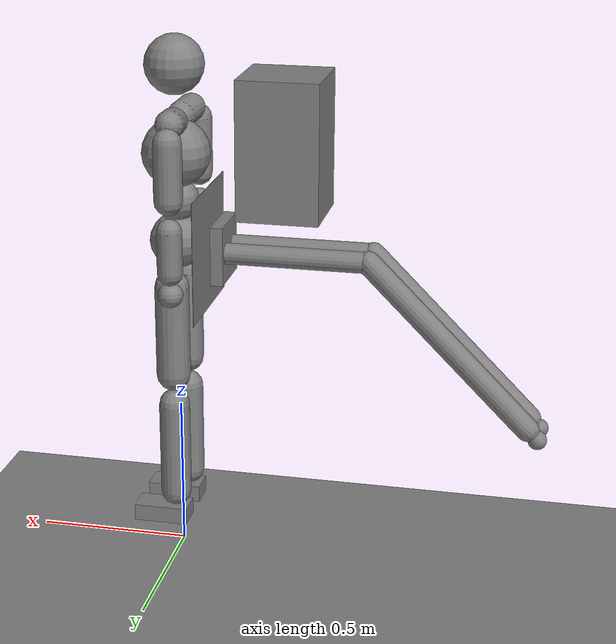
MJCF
<?xml version="1.0" encoding="utf-8"?>
<mujoco model="XMLModel">
	<statistic center="0 0 1" extent="2"/>
	<option timestep="0.00555"/>
	<default>
		<motor ctrllimited="true" ctrlrange="-1 1"/>
		<default class="body">
			<geom condim="1" friction="1.0 0.05 0.05" type="capsule" solimp="0.9 0.99 0.003" solref="0.015 1"/>
			<joint armature="0.007" damping="0.1" limited="true" stiffness="5" type="hinge" solimplimit="0 0.99 0.01"/>
			<site group="3" size="0.04"/>
			<default class="force-torque">
				<site rgba="1 0 0 1" size="0.01 0.01 0.02" type="box"/>
			</default>
			<default class="touch">
				<site rgba="0 0 1 0.3" type="capsule"/>
			</default>
		</default>
	</default>
	<asset/>
	<worldbody>
		<geom conaffinity="1" name="floor" size="100 100 0.2" type="plane"/>
		<body childclass="body" name="pelvis" pos="0 0 1">
			<site class="force-torque" name="root"/>
			<geom density="2226" name="pelvis" pos="0 0 0.07" size="0.09" type="sphere"/>
			<geom density="2226" name="upper_waist" pos="0 0 0.205" size="0.07" type="sphere"/>
			<site class="touch" name="pelvis" pos="0 0 0.07" size="0.091" type="sphere"/>
			<site class="touch" name="upper_waist" pos="0 0 0.205" size="0.071" type="sphere"/>
			<body name="torso" pos="0 0 0.236151">
				<light mode="trackcom" name="top" pos="0 0 2"/>
				<camera mode="trackcom" name="back" pos="-3 0 1" xyaxes="0 -1 0 1 0 2"/>
				<camera mode="trackcom" name="side" pos="0 -3 1" xyaxes="1 0 0 0 1 2"/>
				<joint armature="0.025" axis="1 0 0" damping="60" name="abdomen_x" pos="0 0 0" range="-60 60" stiffness="600"/>
				<joint armature="0.025" axis="0 1 0" damping="60" name="abdomen_y" pos="0 0 0" range="-60 90" stiffness="600"/>
				<joint armature="0.025" axis="0 0 1" damping="60" name="abdomen_z" pos="0 0 0" range="-50 50" stiffness="600"/>
				<geom density="1794" name="torso" pos="0 0 0.12" size="0.11" type="sphere"/>
				<site class="touch" name="torso" pos="0 0 0.12" size="0.111" type="sphere"/>
				<geom density="1100" fromto="-0.0060125 -0.0457775 0.2287955 -0.016835 -0.128177 0.2376182" name="right_clavicle" size="0.045"/>
				<geom density="1100" fromto="-0.0060125 0.0457775 0.2287955 -0.016835 0.128177 0.2376182" name="left_clavicle" size="0.045"/>
				<body name="head" pos="0 0 0.223894">
					<joint armature="0.017" axis="1 0 0" damping="5" name="neck_x" range="-50 50" stiffness="50"/>
					<joint armature="0.017" axis="0 1 0" damping="5" name="neck_y" range="-40 60" stiffness="50"/>
					<joint armature="0.017" axis="0 0 1" damping="5" name="neck_z" range="-45 45" stiffness="50"/>
					<geom density="1081" name="head" pos="0 0 0.175" size="0.095" type="sphere"/>
					<site class="touch" name="head" pos="0 0 0.175" size="0.103" type="sphere"/>
					<camera fovy="80" name="egocentric" pos="0.103 0 0.175" xyaxes="0 -1 0 0.1 0 1"/>
				</body>
				<body name="right_upper_arm" pos="-0.02405 -0.18311 0.2435">
					<joint armature="0.02" axis="1 0 0" damping="20" name="right_shoulder_x" range="-180 45" stiffness="200"/>
					<joint armature="0.02" axis="0 1 0" damping="20" name="right_shoulder_y" range="-180 60" stiffness="200"/>
					<joint armature="0.02" axis="0 0 1" damping="20" name="right_shoulder_z" range="-90 90" stiffness="200"/>
					<geom density="982" fromto="0 0 -0.05 0 0 -0.23" name="right_upper_arm" size="0.045"/>
					<site class="touch" name="right_upper_arm" pos="0 0 -0.14" size="0.046 0.1" zaxis="0 0 1"/>
					<body name="right_lower_arm" pos="0 0 -0.274788">
						<joint armature="0.015" axis="0 1 0" damping="15" name="right_elbow" range="-160 0" stiffness="150"/>
						<geom density="1056" fromto="0 0 -0.0525 0 0 -0.1875" name="right_lower_arm" size="0.04"/>
						<site class="touch" name="right_lower_arm" pos="0 0 -0.12" size="0.041 0.0685" zaxis="0 1 0"/>
						<body name="right_hand" pos="0 0 -0.258947">
							<geom density="1865" name="right_hand" size="0.04" type="sphere"/>
							<site class="touch" name="right_hand" size="0.041" type="sphere"/>
						</body>
					</body>
				</body>
				<body name="left_upper_arm" pos="-0.02405 0.18311 0.2435">
					<joint armature="0.02" axis="1 0 0" damping="20" name="left_shoulder_x" range="-45 180" stiffness="200"/>
					<joint armature="0.02" axis="0 1 0" damping="20" name="left_shoulder_y" range="-180 60" stiffness="200"/>
					<joint armature="0.02" axis="0 0 1" damping="20" name="left_shoulder_z" range="-90 90" stiffness="200"/>
					<geom density="982" fromto="0 0 -0.05 0 0 -0.23" name="left_upper_arm" size="0.045"/>
					<site class="touch" name="left_upper_arm" pos="0 0 -0.14" size="0.046 0.1" zaxis="0 0 1"/>
					<body name="left_lower_arm" pos="0 0 -0.274788">
						<joint armature="0.015" axis="0 1 0" damping="15" name="left_elbow" range="-160 0" stiffness="150"/>
						<geom density="1056" fromto="0 0 -0.0525 0 0 -0.1875" name="left_lower_arm" size="0.04"/>
						<site class="touch" name="left_lower_arm" pos="0 0 -0.1" size="0.041 0.0685" zaxis="0 0 1"/>
						<body name="left_hand" pos="0 0 -0.258947">
							<geom density="1865" name="left_hand" size="0.04" type="sphere"/>
							<site class="touch" name="left_hand" size="0.041" type="sphere"/>
						</body>
					</body>
				</body>
			</body>
			<body name="right_thigh" pos="0 -0.084887 0">
				<site class="force-torque" name="right_hip"/>
				<joint armature="0.02" axis="1 0 0" damping="30" name="right_hip_x" range="-60 15" stiffness="300"/>
				<joint armature="0.02" axis="0 1 0" damping="30" name="right_hip_y" range="-140 60" stiffness="300"/>
				<joint armature="0.02" axis="0 0 1" damping="30" name="right_hip_z" range="-60 35" stiffness="300"/>
				<geom density="1269" fromto="0 0 -0.06 0 0 -0.36" name="right_thigh" size="0.055"/>
				<site class="touch" name="right_thigh" pos="0 0 -0.21" size="0.056 0.301" zaxis="0 0 -1"/>
				<body name="right_shin" pos="0 0 -0.421546">
					<site class="force-torque" name="right_knee" pos="0 0 0"/>
					<joint armature="0.02" axis="0 1 0" damping="30" name="right_knee" pos="0 0 0" range="0 160" stiffness="300"/>
					<geom density="1014" fromto="0 0 -0.045 0 0 -0.355" name="right_shin" size="0.05"/>
					<site class="touch" name="right_shin" pos="0 0 -0.2" size="0.051 0.156" zaxis="0 0 -1"/>
					<body name="right_foot" pos="0 0 -0.40987">
						<site class="force-torque" name="right_ankle"/>
						<joint armature="0.01" axis="1 0 0" damping="20" name="right_ankle_x" pos="0 0 0" range="-30 30" stiffness="200"/>
						<joint armature="0.01" axis="0 1 0" damping="20" name="right_ankle_y" pos="0 0 0" range="-55 55" stiffness="200"/>
						<joint armature="0.01" axis="0 0 1" damping="20" name="right_ankle_z" pos="0 0 0" range="-40 40" stiffness="200"/>
						<geom density="1141" name="right_foot" pos="0.045 0 -0.0225" size="0.0885 0.045 0.0275" type="box"/>
						<site class="touch" name="right_foot" pos="0.045 0 -0.0225" size="0.0895 0.055 0.0285" type="box"/>
					</body>
				</body>
			</body>
			<body name="left_thigh" pos="0 0.084887 0">
				<site class="force-torque" name="left_hip"/>
				<joint armature="0.02" axis="1 0 0" damping="30" name="left_hip_x" range="-15 60" stiffness="300"/>
				<joint armature="0.02" axis="0 1 0" damping="30" name="left_hip_y" range="-140 60" stiffness="300"/>
				<joint armature="0.02" axis="0 0 1" damping="30" name="left_hip_z" range="-35 60" stiffness="300"/>
				<geom density="1269" fromto="0 0 -0.06 0 0 -0.36" name="left_thigh" size="0.055"/>
				<site class="touch" name="left_thigh" pos="0 0 -0.21" size="0.056 0.301" zaxis="0 0 -1"/>
				<body name="left_shin" pos="0 0 -0.421546">
					<site class="force-torque" name="left_knee" pos="0 0 0.02"/>
					<joint armature="0.02" axis="0 1 0" damping="30" name="left_knee" pos="0 0 0" range="0 160" stiffness="300"/>
					<geom density="1014" fromto="0 0 -0.045 0 0 -0.355" name="left_shin" size="0.05"/>
					<site class="touch" name="left_shin" pos="0 0 -0.2" size="0.051 0.156" zaxis="0 0 -1"/>
					<body name="left_foot" pos="0 0 -0.40987">
						<site class="force-torque" name="left_ankle"/>
						<joint armature="0.01" axis="1 0 0" damping="20" name="left_ankle_x" pos="0 0 0" range="-30 30" stiffness="200"/>
						<joint armature="0.01" axis="0 1 0" damping="20" name="left_ankle_y" pos="0 0 0" range="-55 55" stiffness="200"/>
						<joint armature="0.01" axis="0 0 1" damping="20" name="left_ankle_z" pos="0 0 0" range="-40 40" stiffness="200"/>
						<geom density="1141" name="left_foot" pos="0.045 0 -0.0225" size="0.0885 0.045 0.0275" type="box"/>
						<site class="touch" name="left_foot" pos="0.045 0 -0.0225" size="0.0895 0.055 0.0285" type="box"/>
					</body>
				</body>
			</body>
            <body name="SRL" pos="-0.10 0 0.05" quat="0.0 0.0 0.0 1.0">
                <geom name="board" pos="0 0 0" size="0.0005 0.2 0.2 " type="box" density='100'/>
                <body name="SRL_root" pos="0.05 0 0" quat="1.0 0.0 0.0 0.0">
                    <geom density="2500" name="SRL_geom_root" pos="0 0 0" size="0.02 0.095 0.095" type="box"/>
                    <geom density="6000" name="SRL_geom_load" pos="0.2 0 0.35" size="0.13 0.13 0.22" type="box"/>
                    <body name="SRL_right_leg1" pos="0.02 0.0475 0" quat="1.0 0.0 0.0 0.0">
                        <geom density="2500" fromto="0 0 0 0.45525871729565426 0 0" name="SRL_geom_right_leg1" size="0.03380139001341963" type="capsule"/>
                        <joint armature="0.02" axis="0 0 1" damping="30" name="SRL_joint_right_hipjoint_z" pos="0 0 0" range="0 40" stiffness="300"/>
                        <joint armature="0.02" axis="0 1 0" damping="30" name="SRL_joint_right_hipjoint_y" pos="0 0 0" range="-5 70" stiffness="300"/>
                        <body name="SRL_right_leg2" pos="0.45525871729565426 0 0" quat="0.92388 0.0 0.38268 0.0">
                            <geom density="2500" fromto="0 0 0 0.7308293967019263 0 0" name="SRL_geom_right_leg2" size="0.03720657470293556" type="capsule"/>
                            <joint armature="0.02" axis="0 1 0" damping="30" name="SRL_joint_right_kneejoint" pos="0 0 0" range="-50 50" stiffness="300"/>
                            <body name="SRL_right_end" pos="0.7308293967019263 0 0" quat="0.70711 0.0 -0.70711 0.0">
                                <geom density="2500" friction="5.0 0.05 0.05" name="SRL_geom_right_end" pos="0 0 -0.045" size="0.030582728641148155" type="sphere"/>
                                <joint armature="0.02" axis="0 1 0" damping="30" name="SRL_joint_right_ankle" pos="0 0 0" range="-5 5" stiffness="300"/>
                            </body>
                        </body>
                    </body>
                    <body name="SRL_left_leg1" pos="0.02 -0.0475 0" quat="1.0 0.0 0.0 0.0">
                        <geom density="2500" fromto="0 0 0 0.45525871729565426 0 0" name="SRL_geom_left_leg1" size="0.03380139001341963" type="capsule"/>
                        <joint armature="0.02" axis="0 0 1" damping="30" name="SRL_joint_left_hip_z" pos="0 0 0" range="-40 0" stiffness="300"/>
                        <joint armature="0.02" axis="0 1 0" damping="30" name="SRL_joint_left_hip_y" pos="0 0 0" range="-5 70" stiffness="300"/>
                        <body name="SRL_left_leg2" pos="0.45525871729565426 0 0" quat="0.92388 0.0 0.38268 0.0">
                            <geom density="2500" fromto="0 0 0 0.7308293967019263 0 0" name="SRL_geom_left_leg2" size="0.03720657470293556" type="capsule"/>
                            <joint armature="0.02" axis="0 1 0" damping="30" name="SRL_joint_left_kneejoint" pos="0 0 0" range="-50 50" stiffness="300"/>
                            <body name="SRL_left_end" pos="0.7308293967019263 0 0" quat="0.70711 0.0 -0.70711 0.0">
                                <geom density="2500" friction="5.0 0.05 0.05" name="SRL_geom_left_end" pos="0 0 -0.045" size="0.030582728641148155" type="sphere"/>
                                <joint armature="0.02" axis="0 1 0" damping="30" name="SRL_joint_left_ankle" pos="0 0 0" range="-5 5" stiffness="300"/>
                            </body>
                        </body>
                    </body>
                </body>
            </body>
		</body>
	</worldbody>
	<actuator>
		<motor gear="125" joint="abdomen_x" name="abdomen_x"/>
		<motor gear="125" joint="abdomen_y" name="abdomen_y"/>
		<motor gear="125" joint="abdomen_z" name="abdomen_z"/>
		<motor gear="20" joint="neck_x" name="neck_x"/>
		<motor gear="20" joint="neck_y" name="neck_y"/>
		<motor gear="20" joint="neck_z" name="neck_z"/>
		<motor gear="70" joint="right_shoulder_x" name="right_shoulder_x"/>
		<motor gear="70" joint="right_shoulder_y" name="right_shoulder_y"/>
		<motor gear="70" joint="right_shoulder_z" name="right_shoulder_z"/>
		<motor gear="60" joint="right_elbow" name="right_elbow"/>
		<motor gear="70" joint="left_shoulder_x" name="left_shoulder_x"/>
		<motor gear="70" joint="left_shoulder_y" name="left_shoulder_y"/>
		<motor gear="70" joint="left_shoulder_z" name="left_shoulder_z"/>
		<motor gear="60" joint="left_elbow" name="left_elbow"/>
		<motor gear="125" joint="right_hip_x" name="right_hip_x"/>
		<motor gear="125" joint="right_hip_z" name="right_hip_z"/>
		<motor gear="125" joint="right_hip_y" name="right_hip_y"/>
		<motor gear="100" joint="right_knee" name="right_knee"/>
		<motor gear="50" joint="right_ankle_x" name="right_ankle_x"/>
		<motor gear="50" joint="right_ankle_y" name="right_ankle_y"/>
		<motor gear="50" joint="right_ankle_z" name="right_ankle_z"/>
		<motor gear="125" joint="left_hip_x" name="left_hip_x"/>
		<motor gear="125" joint="left_hip_z" name="left_hip_z"/>
		<motor gear="125" joint="left_hip_y" name="left_hip_y"/>
		<motor gear="100" joint="left_knee" name="left_knee"/>
		<motor gear="50" joint="left_ankle_x" name="left_ankle_x"/>
		<motor gear="50" joint="left_ankle_y" name="left_ankle_y"/>
		<motor gear="50" joint="left_ankle_z" name="left_ankle_z"/>
        <motor gear="50" joint="sensor_x" name="sensor_x"/>
		<motor gear="50" joint="sensor_y" name="sensor_y"/>
		<motor gear="50" joint="sensor_z" name="sensor_z"/>
		<motor gear="125" joint="SRL_joint_right_hipjoint_z" name="SRL_joint_right_hipjoint_z"/>
		<motor gear="125" joint="SRL_joint_right_hipjoint_y" name="SRL_joint_right_hipjoint_y"/>
		<motor gear="125" joint="SRL_joint_right_kneejoint" name="SRL_joint_right_kneejoint"/>
		<motor gear="125" joint="SRL_joint_right_ankle" name="SRL_joint_right_ankle"/>
		<motor gear="125" joint="SRL_joint_left_hip_z" name="SRL_joint_left_hip_z"/>
		<motor gear="125" joint="SRL_joint_left_hip_y" name="SRL_joint_left_hip_y"/>
		<motor gear="125" joint="SRL_joint_left_kneejoint" name="SRL_joint_left_kneejoint"/>
		<motor gear="125" joint="SRL_joint_left_ankle" name="SRL_joint_left_ankle"/>
	</actuator>
	<sensor>
		<subtreelinvel body="pelvis" name="pelvis_subtreelinvel"/>
		<accelerometer site="root" name="root_accel"/>
		<velocimeter site="root" name="root_vel"/>
		<gyro site="root" name="root_gyro"/>
		<force site="left_ankle" name="left_ankle_force"/>
		<force site="right_ankle" name="right_ankle_force"/>
		<force site="left_knee" name="left_knee_force"/>
		<force site="right_knee" name="right_knee_force"/>
		<force site="left_hip" name="left_hip_force"/>
		<force site="right_hip" name="right_hip_force"/>
		<torque site="left_ankle" name="left_ankle_torque"/>
		<torque site="right_ankle" name="right_ankle_torque"/>
		<torque site="left_knee" name="left_knee_torque"/>
		<torque site="right_knee" name="right_knee_torque"/>
		<torque site="left_hip" name="left_hip_torque"/>
		<torque site="right_hip" name="right_hip_torque"/>
		<touch site="pelvis" name="pelvis_touch"/>
		<touch site="upper_waist" name="upper_waist_touch"/>
		<touch site="torso" name="torso_touch"/>
		<touch site="head" name="head_touch"/>
		<touch site="right_upper_arm" name="right_upper_arm_touch"/>
		<touch site="right_lower_arm" name="right_lower_arm_touch"/>
		<touch site="right_hand" name="right_hand_touch"/>
		<touch site="left_upper_arm" name="left_upper_arm_touch"/>
		<touch site="left_lower_arm" name="left_lower_arm_touch"/>
		<touch site="left_hand" name="left_hand_touch"/>
		<touch site="right_thigh" name="right_thigh_touch"/>
		<touch site="right_shin" name="right_shin_touch"/>
		<touch site="right_foot" name="right_foot_touch"/>
		<touch site="left_thigh" name="left_thigh_touch"/>
		<touch site="left_shin" name="left_shin_touch"/>
		<touch site="left_foot" name="left_foot_touch"/>
	</sensor>
</mujoco>
